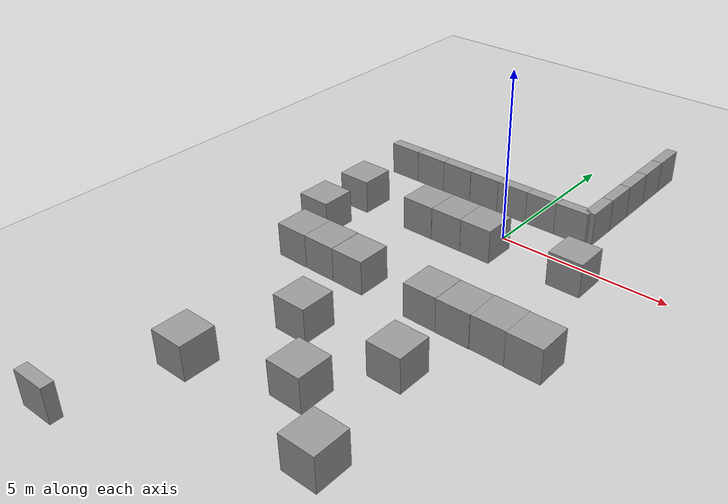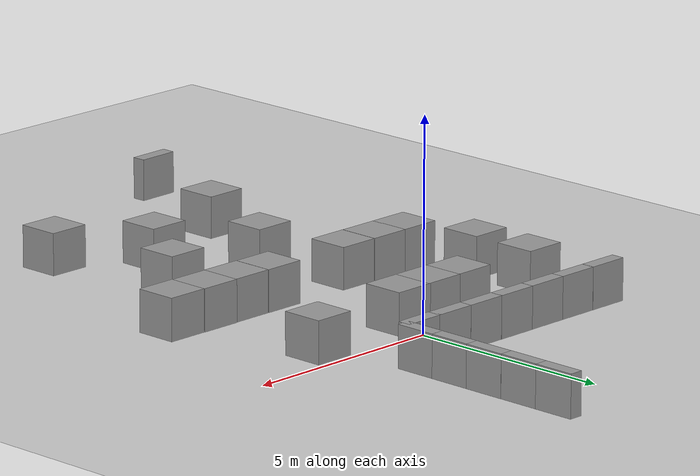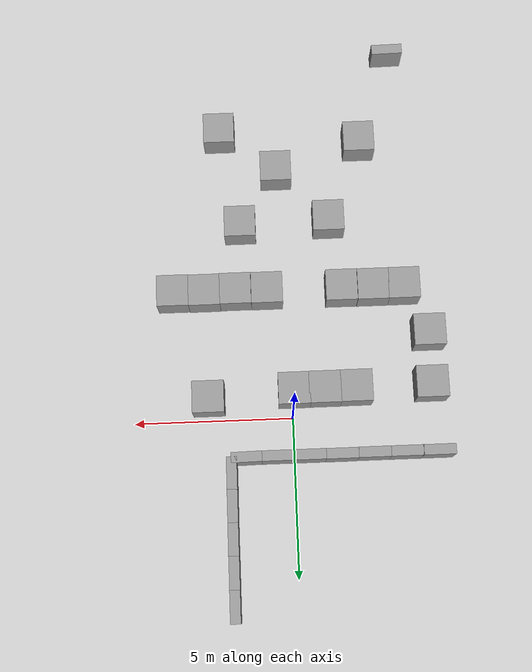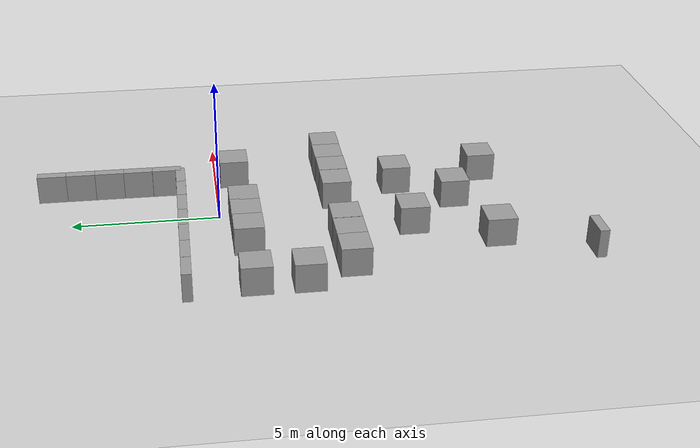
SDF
<sdf version="1.6">
 <world name="default">
  <light name="sun" type="directional">
   <pose>0 0 10 0 -0 0</pose>
   <diffuse>0.8 0.8 0.8 1</diffuse>
   <specular>0.2 0.2 0.2 1</specular>
   <attenuation>
    <range>1000</range>
    <constant>0.9</constant>
    <linear>0.01</linear>
    <quadratic>0.001</quadratic>
   </attenuation>
   <direction>-0.5 0.1 -0.9</direction>
  </light>
  <model name="ground_plane">
   <static>1</static>
   <link name="link">
    <collision name="collision">
     <geometry><plane><normal>0 0 1</normal><size>100 100</size></plane></geometry>
     <surface><friction><ode><mu>100</mu><mu2>50</mu2></ode></friction></surface>
    </collision>
    <visual name="visual">
     <cast_shadows>0</cast_shadows>
     <geometry><plane><normal>0 0 1</normal><size>100 100</size></plane></geometry>
     <material>
      <script><uri>file://media/materials/scripts/gazebo.material</uri><name>Gazebo/Grey</name></script>
     </material>
    </visual>
   </link>
  </model>
  <gravity>0 0 -9.8</gravity>
  <magnetic_field>6e-06 2.3e-05 -4.2e-05</magnetic_field>
  <atmosphere type="adiabatic"/>
  <physics name="default_physics" default="0" type="ode">
   <max_step_size>0.001</max_step_size>
   <real_time_factor>1</real_time_factor>
   <real_time_update_rate>0</real_time_update_rate>
  </physics>
  <scene><ambient>0.4 0.4 0.4 1</ambient><background>0.7 0.7 0.7 1</background><shadows>1</shadows></scene>
  <spherical_coordinates>
   <surface_model>EARTH_WGS84</surface_model>
   <latitude_deg>0</latitude_deg>
   <longitude_deg>0</longitude_deg>
   <elevation>0</elevation>
   <heading_deg>0</heading_deg>
  </spherical_coordinates>
  <model name="unit_box_clone">
   <static>1</static>
   <pose>-4.4761 1.2482 0.5 0 -0 0</pose>
   <link name="link">
    <inertial>
     <mass>1</mass>
     <inertia>
      <ixx>0.166667</ixx>
      <ixy>0</ixy>
      <ixz>0</ixz>
      <iyy>0.166667</iyy>
      <iyz>0</iyz>
      <izz>0.166667</izz>
     </inertia>
    </inertial>
    <collision name="collision"><geometry><box><size>1 0.324011 1</size></box></geometry></collision>
    <visual name="visual">
     <geometry><box><size>1 0.324011 1</size></box></geometry>
     <material>
      <script><name>Gazebo/Grey</name><uri>file://media/materials/scripts/gazebo.material</uri></script>
     </material>
    </visual>
   </link>
  </model>
  <model name="unit_box_clone_clone">
   <static>1</static>
   <pose>-3.47223 1.24765 0.5 0 -0 0</pose>
   <link name="link">
    <inertial>
     <mass>1</mass>
     <inertia>
      <ixx>0.166667</ixx>
      <ixy>0</ixy>
      <ixz>0</ixz>
      <iyy>0.166667</iyy>
      <iyz>0</iyz>
      <izz>0.166667</izz>
     </inertia>
    </inertial>
    <collision name="collision"><geometry><box><size>1 0.324011 1</size></box></geometry></collision>
    <visual name="visual">
     <geometry><box><size>1 0.324011 1</size></box></geometry>
     <material>
      <script><name>Gazebo/Grey</name><uri>file://media/materials/scripts/gazebo.material</uri></script>
     </material>
    </visual>
   </link>
  </model>
  <model name="unit_box_clone_clone_0">
   <static>1</static>
   <pose>-2.47445 1.24792 0.5 0 -0 0</pose>
   <link name="link">
    <inertial>
     <mass>1</mass>
     <inertia>
      <ixx>0.166667</ixx>
      <ixy>0</ixy>
      <ixz>0</ixz>
      <iyy>0.166667</iyy>
      <iyz>0</iyz>
      <izz>0.166667</izz>
     </inertia>
    </inertial>
    <collision name="collision"><geometry><box><size>1 0.324011 1</size></box></geometry></collision>
    <visual name="visual">
     <geometry><box><size>1 0.324011 1</size></box></geometry>
     <material>
      <script><name>Gazebo/Grey</name><uri>file://media/materials/scripts/gazebo.material</uri></script>
     </material>
    </visual>
   </link>
  </model>
  <model name="unit_box_clone_clone_1">
   <static>1</static>
   <pose>-1.47338 1.25381 0.5 0 -0 0</pose>
   <link name="link">
    <inertial>
     <mass>1</mass>
     <inertia>
      <ixx>0.166667</ixx>
      <ixy>0</ixy>
      <ixz>0</ixz>
      <iyy>0.166667</iyy>
      <iyz>0</iyz>
      <izz>0.166667</izz>
     </inertia>
    </inertial>
    <collision name="collision"><geometry><box><size>1 0.324011 1</size></box></geometry></collision>
    <visual name="visual">
     <geometry><box><size>1 0.324011 1</size></box></geometry>
     <material>
      <script><name>Gazebo/Grey</name><uri>file://media/materials/scripts/gazebo.material</uri></script>
     </material>
    </visual>
   </link>
  </model>
  <model name="unit_box_clone_clone_2">
   <static>1</static>
   <pose>-0.490404 1.25091 0.5 0 -0 0</pose>
   <link name="link">
    <inertial>
     <mass>1</mass>
     <inertia>
      <ixx>0.166667</ixx>
      <ixy>0</ixy>
      <ixz>0</ixz>
      <iyy>0.166667</iyy>
      <iyz>0</iyz>
      <izz>0.166667</izz>
     </inertia>
    </inertial>
    <collision name="collision"><geometry><box><size>1 0.324011 1</size></box></geometry></collision>
    <visual name="visual">
     <geometry><box><size>1 0.324011 1</size></box></geometry>
     <material>
      <script><name>Gazebo/Grey</name><uri>file://media/materials/scripts/gazebo.material</uri></script>
     </material>
    </visual>
   </link>
  </model>
  <model name="unit_box_clone_clone_3">
   <static>1</static>
   <pose>0.507813 1.24999 0.5 0 -0 0</pose>
   <link name="link">
    <inertial>
     <mass>1</mass>
     <inertia>
      <ixx>0.166667</ixx>
      <ixy>0</ixy>
      <ixz>0</ixz>
      <iyy>0.166667</iyy>
      <iyz>0</iyz>
      <izz>0.166667</izz>
     </inertia>
    </inertial>
    <collision name="collision"><geometry><box><size>1 0.324011 1</size></box></geometry></collision>
    <visual name="visual">
     <geometry><box><size>1 0.324011 1</size></box></geometry>
     <material>
      <script><name>Gazebo/Grey</name><uri>file://media/materials/scripts/gazebo.material</uri></script>
     </material>
    </visual>
   </link>
  </model>
  <model name="unit_box_clone_clone_4">
   <static>1</static>
   <pose>1.46483 1.25606 0.5 0 -0 0.018668</pose>
   <link name="link">
    <inertial>
     <mass>1</mass>
     <inertia>
      <ixx>0.166667</ixx>
      <ixy>0</ixy>
      <ixz>0</ixz>
      <iyy>0.166667</iyy>
      <iyz>0</iyz>
      <izz>0.166667</izz>
     </inertia>
    </inertial>
    <collision name="collision"><geometry><box><size>1 0.324011 1</size></box></geometry></collision>
    <visual name="visual">
     <geometry><box><size>1 0.324011 1</size></box></geometry>
     <material>
      <script><name>Gazebo/Grey</name><uri>file://media/materials/scripts/gazebo.material</uri></script>
     </material>
    </visual>
   </link>
  </model>
  <model name="unit_box_clone_clone_4_clone">
   <static>1</static>
   <pose>1.96429 5.71498 0.5 0 -0 1.56798</pose>
   <link name="link">
    <inertial>
     <mass>1</mass>
     <inertia>
      <ixx>0.166667</ixx>
      <ixy>0</ixy>
      <ixz>0</ixz>
      <iyy>0.166667</iyy>
      <iyz>0</iyz>
      <izz>0.166667</izz>
     </inertia>
    </inertial>
    <collision name="collision"><geometry><box><size>1 0.324011 1</size></box></geometry></collision>
    <visual name="visual">
     <geometry><box><size>1 0.324011 1</size></box></geometry>
     <material>
      <script><name>Gazebo/Grey</name><uri>file://media/materials/scripts/gazebo.material</uri></script>
     </material>
    </visual>
   </link>
  </model>
  <model name="unit_box_clone_clone_4_clone_0">
   <static>1</static>
   <pose>1.96149 4.72602 0.5 0 -0 1.56798</pose>
   <link name="link">
    <inertial>
     <mass>1</mass>
     <inertia>
      <ixx>0.166667</ixx>
      <ixy>0</ixy>
      <ixz>0</ixz>
      <iyy>0.166667</iyy>
      <iyz>0</iyz>
      <izz>0.166667</izz>
     </inertia>
    </inertial>
    <collision name="collision"><geometry><box><size>1 0.324011 1</size></box></geometry></collision>
    <visual name="visual">
     <geometry><box><size>1 0.324011 1</size></box></geometry>
     <material>
      <script><name>Gazebo/Grey</name><uri>file://media/materials/scripts/gazebo.material</uri></script>
     </material>
    </visual>
   </link>
  </model>
  <model name="unit_box_clone_clone_4_clone_1">
   <static>1</static>
   <pose>1.96139 3.72934 0.5 0 -0 1.56798</pose>
   <link name="link">
    <inertial>
     <mass>1</mass>
     <inertia>
      <ixx>0.166667</ixx>
      <ixy>0</ixy>
      <ixz>0</ixz>
      <iyy>0.166667</iyy>
      <iyz>0</iyz>
      <izz>0.166667</izz>
     </inertia>
    </inertial>
    <collision name="collision"><geometry><box><size>1 0.324011 1</size></box></geometry></collision>
    <visual name="visual">
     <geometry><box><size>1 0.324011 1</size></box></geometry>
     <material>
      <script><name>Gazebo/Grey</name><uri>file://media/materials/scripts/gazebo.material</uri></script>
     </material>
    </visual>
   </link>
  </model>
  <model name="unit_box_clone_clone_4_clone_2">
   <static>1</static>
   <pose>1.9568 2.72914 0.5 0 -0 1.56798</pose>
   <link name="link">
    <inertial>
     <mass>1</mass>
     <inertia>
      <ixx>0.166667</ixx>
      <ixy>0</ixy>
      <ixz>0</ixz>
      <iyy>0.166667</iyy>
      <iyz>0</iyz>
      <izz>0.166667</izz>
     </inertia>
    </inertial>
    <collision name="collision"><geometry><box><size>1 0.324011 1</size></box></geometry></collision>
    <visual name="visual">
     <geometry><box><size>1 0.324011 1</size></box></geometry>
     <material>
      <script><name>Gazebo/Grey</name><uri>file://media/materials/scripts/gazebo.material</uri></script>
     </material>
    </visual>
   </link>
  </model>
  <model name="unit_box_clone_clone_4_clone_3">
   <static>1</static>
   <pose>1.95144 1.72766 0.5 0 -0 1.56798</pose>
   <link name="link">
    <inertial>
     <mass>1</mass>
     <inertia>
      <ixx>0.166667</ixx>
      <ixy>0</ixy>
      <ixz>0</ixz>
      <iyy>0.166667</iyy>
      <iyz>0</iyz>
      <izz>0.166667</izz>
     </inertia>
    </inertial>
    <collision name="collision"><geometry><box><size>1 0.324011 1</size></box></geometry></collision>
    <visual name="visual">
     <geometry><box><size>1 0.324011 1</size></box></geometry>
     <material>
      <script><name>Gazebo/Grey</name><uri>file://media/materials/scripts/gazebo.material</uri></script>
     </material>
    </visual>
   </link>
  </model>
  <model name="unit_box_clone_clone_4_clone_4">
   <static>1</static>
   <pose>-3.61605 -12.1381 0.5 0 -0 0.018668</pose>
   <link name="link">
    <inertial>
     <mass>1</mass>
     <inertia>
      <ixx>0.166667</ixx>
      <ixy>0</ixy>
      <ixz>0</ixz>
      <iyy>0.166667</iyy>
      <iyz>0</iyz>
      <izz>0.166667</izz>
     </inertia>
    </inertial>
    <collision name="collision"><geometry><box><size>1 0.324011 1</size></box></geometry></collision>
    <visual name="visual">
     <geometry><box><size>1 0.324011 1</size></box></geometry>
     <material>
      <script><name>Gazebo/Grey</name><uri>file://media/materials/scripts/gazebo.material</uri></script>
     </material>
    </visual>
   </link>
  </model>
  <model name="unit_box_clone_0">
   <static>1</static>
   <pose>-2.51219 -9.10415 0.5 0 -0 0</pose>
   <link name="link">
    <inertial>
     <mass>1</mass>
     <inertia>
      <ixx>0.166667</ixx>
      <ixy>0</ixy>
      <ixz>0</ixz>
      <iyy>0.166667</iyy>
      <iyz>0</iyz>
      <izz>0.166667</izz>
     </inertia>
    </inertial>
    <collision name="collision"><geometry><box><size>1 1 1</size></box></geometry></collision>
    <visual name="visual">
     <geometry><box><size>1 1 1</size></box></geometry>
     <material>
      <script><name>Gazebo/Grey</name><uri>file://media/materials/scripts/gazebo.material</uri></script>
     </material>
    </visual>
   </link>
  </model>
  <model name="unit_box_clone_1">
   <static>1</static>
   <pose>-1.39895 -6.43001 0.5 0 -0 0</pose>
   <link name="link">
    <inertial>
     <mass>1</mass>
     <inertia>
      <ixx>0.166667</ixx>
      <ixy>0</ixy>
      <ixz>0</ixz>
      <iyy>0.166667</iyy>
      <iyz>0</iyz>
      <izz>0.166667</izz>
     </inertia>
    </inertial>
    <collision name="collision"><geometry><box><size>1 1 1</size></box></geometry></collision>
    <visual name="visual">
     <geometry><box><size>1 1 1</size></box></geometry>
     <material>
      <script><name>Gazebo/Grey</name><uri>file://media/materials/scripts/gazebo.material</uri></script>
     </material>
    </visual>
   </link>
  </model>
  <model name="unit_box_clone_2">
   <static>1</static>
   <pose>-2.71765 -4.09152 0.5 0 -0 0</pose>
   <link name="link">
    <inertial>
     <mass>1</mass>
     <inertia>
      <ixx>0.166667</ixx>
      <ixy>0</ixy>
      <ixz>0</ixz>
      <iyy>0.166667</iyy>
      <iyz>0</iyz>
      <izz>0.166667</izz>
     </inertia>
    </inertial>
    <collision name="collision"><geometry><box><size>1 1 1</size></box></geometry></collision>
    <visual name="visual">
     <geometry><box><size>1 1 1</size></box></geometry>
     <material>
      <script><name>Gazebo/Grey</name><uri>file://media/materials/scripts/gazebo.material</uri></script>
     </material>
    </visual>
   </link>
  </model>
  <model name="unit_box_clone_3">
   <static>1</static>
   <pose>2.05875 -9.55304 0.5 0 -0 0</pose>
   <link name="link">
    <inertial>
     <mass>1</mass>
     <inertia>
      <ixx>0.166667</ixx>
      <ixy>0</ixy>
      <ixz>0</ixz>
      <iyy>0.166667</iyy>
      <iyz>0</iyz>
      <izz>0.166667</izz>
     </inertia>
    </inertial>
    <collision name="collision"><geometry><box><size>1 1 1</size></box></geometry></collision>
    <visual name="visual">
     <geometry><box><size>1 1 1</size></box></geometry>
     <material>
      <script><name>Gazebo/Grey</name><uri>file://media/materials/scripts/gazebo.material</uri></script>
     </material>
    </visual>
   </link>
  </model>
  <model name="unit_box_clone_4">
   <static>1</static>
   <pose>0.244765 -8.17737 0.5 0 -0 0</pose>
   <link name="link">
    <inertial>
     <mass>1</mass>
     <inertia>
      <ixx>0.166667</ixx>
      <ixy>0</ixy>
      <ixz>0</ixz>
      <iyy>0.166667</iyy>
      <iyz>0</iyz>
      <izz>0.166667</izz>
     </inertia>
    </inertial>
    <collision name="collision"><geometry><box><size>1 1 1</size></box></geometry></collision>
    <visual name="visual">
     <geometry><box><size>1 1 1</size></box></geometry>
     <material>
      <script><name>Gazebo/Grey</name><uri>file://media/materials/scripts/gazebo.material</uri></script>
     </material>
    </visual>
   </link>
  </model>
  <model name="unit_box_clone_5">
   <static>1</static>
   <pose>1.46574 -6.33432 0.5 0 -0 0</pose>
   <link name="link">
    <inertial>
     <mass>1</mass>
     <inertia>
      <ixx>0.166667</ixx>
      <ixy>0</ixy>
      <ixz>0</ixz>
      <iyy>0.166667</iyy>
      <iyz>0</iyz>
      <izz>0.166667</izz>
     </inertia>
    </inertial>
    <collision name="collision"><geometry><box><size>1 1 1</size></box></geometry></collision>
    <visual name="visual">
     <geometry><box><size>1 1 1</size></box></geometry>
     <material>
      <script><name>Gazebo/Grey</name><uri>file://media/materials/scripts/gazebo.material</uri></script>
     </material>
    </visual>
   </link>
  </model>
  <model name="unit_box_clone_7">
   <static>1</static>
   <pose>2.62622 -0.66443 0.5 0 -0 0</pose>
   <link name="link">
    <inertial>
     <mass>1</mass>
     <inertia>
      <ixx>0.166667</ixx>
      <ixy>0</ixy>
      <ixz>0</ixz>
      <iyy>0.166667</iyy>
      <iyz>0</iyz>
      <izz>0.166667</izz>
     </inertia>
    </inertial>
    <collision name="collision"><geometry><box><size>1 1 1</size></box></geometry></collision>
    <visual name="visual">
     <geometry><box><size>1 1 1</size></box></geometry>
     <material>
      <script><name>Gazebo/Grey</name><uri>file://media/materials/scripts/gazebo.material</uri></script>
     </material>
    </visual>
   </link>
  </model>
  <model name="unit_box_clone_8">
   <static>1</static>
   <pose>-4.418 -2.54902 0.5 0 -0 0</pose>
   <link name="link">
    <inertial>
     <mass>1</mass>
     <inertia>
      <ixx>0.166667</ixx>
      <ixy>0</ixy>
      <ixz>0</ixz>
      <iyy>0.166667</iyy>
      <iyz>0</iyz>
      <izz>0.166667</izz>
     </inertia>
    </inertial>
    <collision name="collision"><geometry><box><size>1 1 1</size></box></geometry></collision>
    <visual name="visual">
     <geometry><box><size>1 1 1</size></box></geometry>
     <material>
      <script><name>Gazebo/Grey</name><uri>file://media/materials/scripts/gazebo.material</uri></script>
     </material>
    </visual>
   </link>
  </model>
  <model name="unit_box_clone_9">
   <static>1</static>
   <pose>-4.39335 -0.889836 0.5 0 -0 0</pose>
   <link name="link">
    <inertial>
     <mass>1</mass>
     <inertia>
      <ixx>0.166667</ixx>
      <ixy>0</ixy>
      <ixz>0</ixz>
      <iyy>0.166667</iyy>
      <iyz>0</iyz>
      <izz>0.166667</izz>
     </inertia>
    </inertial>
    <collision name="collision"><geometry><box><size>1 1 1</size></box></geometry></collision>
    <visual name="visual">
     <geometry><box><size>1 1 1</size></box></geometry>
     <material>
      <script><name>Gazebo/Grey</name><uri>file://media/materials/scripts/gazebo.material</uri></script>
     </material>
    </visual>
   </link>
  </model>
  <model name="unit_box_clone_10">
   <static>1</static>
   <pose>-2.0199 -0.845525 0.5 0 -0 0</pose>
   <link name="link">
    <inertial>
     <mass>1</mass>
     <inertia>
      <ixx>0.166667</ixx>
      <ixy>0</ixy>
      <ixz>0</ixz>
      <iyy>0.166667</iyy>
      <iyz>0</iyz>
      <izz>0.166667</izz>
     </inertia>
    </inertial>
    <collision name="collision"><geometry><box><size>1 1 1</size></box></geometry></collision>
    <visual name="visual">
     <geometry><box><size>1 1 1</size></box></geometry>
     <material>
      <script><name>Gazebo/Grey</name><uri>file://media/materials/scripts/gazebo.material</uri></script>
     </material>
    </visual>
   </link>
  </model>
  <model name="unit_box_clone_11">
   <static>1</static>
   <pose>-1.03147 -0.839847 0.5 0 -0 0</pose>
   <link name="link">
    <inertial>
     <mass>1</mass>
     <inertia>
      <ixx>0.166667</ixx>
      <ixy>0</ixy>
      <ixz>0</ixz>
      <iyy>0.166667</iyy>
      <iyz>0</iyz>
      <izz>0.166667</izz>
     </inertia>
    </inertial>
    <collision name="collision"><geometry><box><size>1 1 1</size></box></geometry></collision>
    <visual name="visual">
     <geometry><box><size>1 1 1</size></box></geometry>
     <material>
      <script><name>Gazebo/Grey</name><uri>file://media/materials/scripts/gazebo.material</uri></script>
     </material>
    </visual>
   </link>
  </model>
  <model name="unit_box_clone_12">
   <static>1</static>
   <pose>-0.071194 -0.835018 0.5 0 -0 0</pose>
   <link name="link">
    <inertial>
     <mass>1</mass>
     <inertia>
      <ixx>0.166667</ixx>
      <ixy>0</ixy>
      <ixz>0</ixz>
      <iyy>0.166667</iyy>
      <iyz>0</iyz>
      <izz>0.166667</izz>
     </inertia>
    </inertial>
    <collision name="collision"><geometry><box><size>1 1 1</size></box></geometry></collision>
    <visual name="visual">
     <geometry><box><size>1 1 1</size></box></geometry>
     <material>
      <script><name>Gazebo/Grey</name><uri>file://media/materials/scripts/gazebo.material</uri></script>
     </material>
    </visual>
   </link>
  </model>
  <model name="unit_box_clone_6">
   <static>1</static>
   <pose>-3.69961 -4.09295 0.5 0 -0 0</pose>
   <link name="link">
    <inertial>
     <mass>1</mass>
     <inertia>
      <ixx>0.166667</ixx>
      <ixy>0</ixy>
      <ixz>0</ixz>
      <iyy>0.166667</iyy>
      <iyz>0</iyz>
      <izz>0.166667</izz>
     </inertia>
    </inertial>
    <collision name="collision"><geometry><box><size>1 1 1</size></box></geometry></collision>
    <visual name="visual">
     <geometry><box><size>1 1 1</size></box></geometry>
     <material>
      <script><name>Gazebo/Grey</name><uri>file://media/materials/scripts/gazebo.material</uri></script>
     </material>
    </visual>
   </link>
  </model>
  <model name="unit_box_clone_13">
   <static>1</static>
   <pose>-1.70984 -4.09696 0.5 0 -0 0</pose>
   <link name="link">
    <inertial>
     <mass>1</mass>
     <inertia>
      <ixx>0.166667</ixx>
      <ixy>0</ixy>
      <ixz>0</ixz>
      <iyy>0.166667</iyy>
      <iyz>0</iyz>
      <izz>0.166667</izz>
     </inertia>
    </inertial>
    <collision name="collision"><geometry><box><size>1 1 1</size></box></geometry></collision>
    <visual name="visual">
     <geometry><box><size>1 1 1</size></box></geometry>
     <material>
      <script><name>Gazebo/Grey</name><uri>file://media/materials/scripts/gazebo.material</uri></script>
     </material>
    </visual>
   </link>
  </model>
  <model name="unit_box_clone_15">
   <static>1</static>
   <pose>0.672459 -4.09856 0.5 0 -0 0</pose>
   <link name="link">
    <inertial>
     <mass>1</mass>
     <inertia>
      <ixx>0.166667</ixx>
      <ixy>0</ixy>
      <ixz>0</ixz>
      <iyy>0.166667</iyy>
      <iyz>0</iyz>
      <izz>0.166667</izz>
     </inertia>
    </inertial>
    <collision name="collision"><geometry><box><size>1 1 1</size></box></geometry></collision>
    <visual name="visual">
     <geometry><box><size>1 1 1</size></box></geometry>
     <material>
      <script><name>Gazebo/Grey</name><uri>file://media/materials/scripts/gazebo.material</uri></script>
     </material>
    </visual>
   </link>
  </model>
  <model name="unit_box_clone_16">
   <static>1</static>
   <pose>1.6771 -4.1059 0.5 0 -0 0</pose>
   <link name="link">
    <inertial>
     <mass>1</mass>
     <inertia>
      <ixx>0.166667</ixx>
      <ixy>0</ixy>
      <ixz>0</ixz>
      <iyy>0.166667</iyy>
      <iyz>0</iyz>
      <izz>0.166667</izz>
     </inertia>
    </inertial>
    <collision name="collision"><geometry><box><size>1 1 1</size></box></geometry></collision>
    <visual name="visual">
     <geometry><box><size>1 1 1</size></box></geometry>
     <material>
      <script><name>Gazebo/Grey</name><uri>file://media/materials/scripts/gazebo.material</uri></script>
     </material>
    </visual>
   </link>
  </model>
  <model name="unit_box_clone_4_clone">
   <static>1</static>
   <pose>2.67232 -4.09246 0.5 0 -0 0</pose>
   <link name="link">
    <inertial>
     <mass>1</mass>
     <inertia>
      <ixx>0.166667</ixx>
      <ixy>0</ixy>
      <ixz>0</ixz>
      <iyy>0.166667</iyy>
      <iyz>0</iyz>
      <izz>0.166667</izz>
     </inertia>
    </inertial>
    <collision name="collision"><geometry><box><size>1 1 1</size></box></geometry></collision>
    <visual name="visual">
     <geometry><box><size>1 1 1</size></box></geometry>
     <material>
      <script><name>Gazebo/Grey</name><uri>file://media/materials/scripts/gazebo.material</uri></script>
     </material>
    </visual>
   </link>
  </model>
  <model name="unit_box_clone_4_clone_0">
   <static>1</static>
   <pose>3.67117 -4.10503 0.5 0 -0 0</pose>
   <link name="link">
    <inertial>
     <mass>1</mass>
     <inertia>
      <ixx>0.166667</ixx>
      <ixy>0</ixy>
      <ixz>0</ixz>
      <iyy>0.166667</iyy>
      <iyz>0</iyz>
      <izz>0.166667</izz>
     </inertia>
    </inertial>
    <collision name="collision"><geometry><box><size>1 1 1</size></box></geometry></collision>
    <visual name="visual">
     <geometry><box><size>1 1 1</size></box></geometry>
     <material>
      <script><name>Gazebo/Grey</name><uri>file://media/materials/scripts/gazebo.material</uri></script>
     </material>
    </visual>
   </link>
  </model>
 </world>
</sdf>
